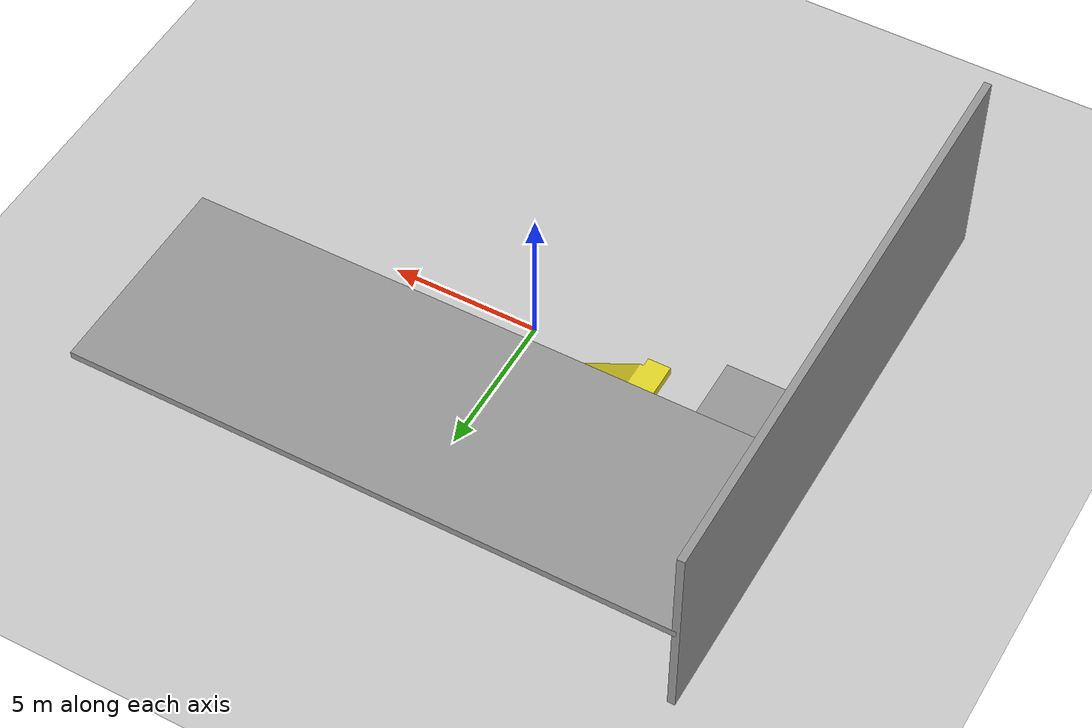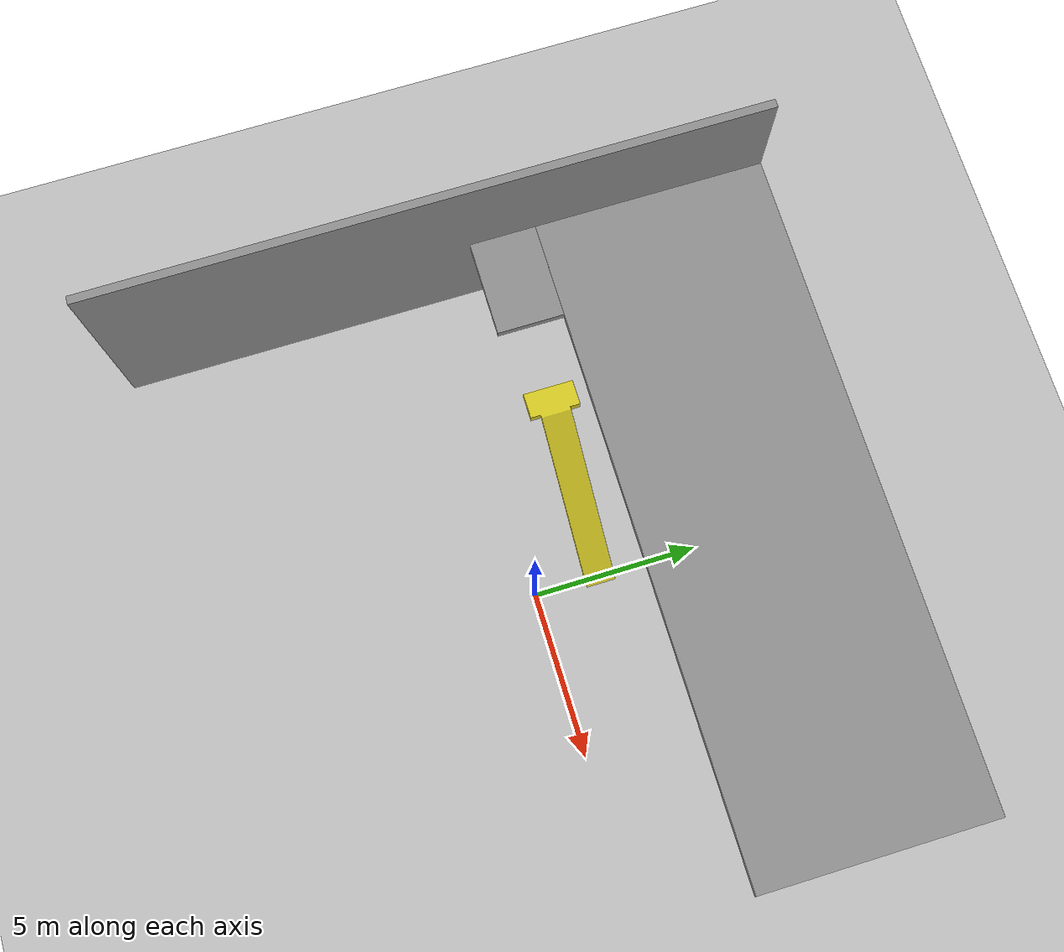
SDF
<sdf version="1.6">
 <world name="default">
  <include><uri>model://sun</uri></include>
  <include><uri>model://ground_plane</uri></include>
  <include><uri>model://stairs</uri><name>stairs</name><pose>0 2.0 0 0 0 -1.570796</pose></include>
  <model name="room">
   <static>true</static>
   <link name="front_wall">
    <collision name="front_wall_collision">
     <pose>-10 0 3.5 0 0 0</pose>
     <geometry><box><size>0.25 20 7</size></box></geometry>
    </collision>
    <visual name="front_wall_visual">
     <cast_shadows>false</cast_shadows>
     <pose>-10 0 3.5 0 0 0</pose>
     <geometry><box><size>0.25 20 7</size></box></geometry>
     <material>
      <script><name>Gazebo/Gray</name><uri>file://media/materials/scripts/gazebo.material</uri></script>
     </material>
    </visual>
   </link>
   <link name="top_floor">
    <collision name="top_floor_collision">
     <pose>0 6.5 3.5 0 -1.570796 1.570796</pose>
     <geometry><box><size>0.25 20 7</size></box></geometry>
    </collision>
    <visual name="top_floor_visual">
     <cast_shadows>false</cast_shadows>
     <pose>0 6.5 3.5 0 -1.570796 1.570796</pose>
     <geometry><box><size>0.25 20 7</size></box></geometry>
     <material>
      <script><name>Gazebo/Gray</name><uri>file://media/materials/scripts/gazebo.material</uri></script>
     </material>
    </visual>
    <collision name="top_floor_stairs_collision">
     <pose>-8.5 2 3.5 0 -1.570796 1.570796</pose>
     <geometry><box><size>0.25 3 2</size></box></geometry>
    </collision>
    <visual name="top_floor_stairs_visual">
     <cast_shadows>false</cast_shadows>
     <pose>-8.5 2 3.5 0 -1.570796 1.570796</pose>
     <geometry><box><size>0.25 3 2</size></box></geometry>
     <material>
      <script><name>Gazebo/Gray</name><uri>file://media/materials/scripts/gazebo.material</uri></script>
     </material>
    </visual>
   </link>
  </model>
 </world>
</sdf>

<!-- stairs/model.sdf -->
<sdf version='1.7'>
  <model name='stairs'>
    <static>true</static>
    <link name='base_link'>
      <inertial>
        <pose>-1.5939E-14 -3.0532 1.8301 0 0 0</pose>
        <mass>926.96</mass>
        <inertia>
          <ixx>5747.3</ixx>
          <ixy>-3.7391E-14</ixy>
          <ixz>-2.1153E-14</ixz>
          <iyy>611.9</iyy>
          <iyz>2485.9</iyz>
          <izz>4480.6</izz>
        </inertia>
      </inertial>
      <collision name='base_link_collision'>
        <pose>0 0 0 0 -0 0</pose>
        <geometry>
          <mesh>
            <scale>0.75 0.75 0.75</scale>
            <uri>model://stairs/meshes/collision_1.STL</uri>
          </mesh>
        </geometry>
      </collision>
      <visual name='base_link_visual'>
        <pose>0 0 0 0 -0 0</pose>
        <geometry>
          <mesh>
            <scale>0.75 0.75 0.75</scale>
            <uri>model://stairs/meshes/visual.STL</uri>
          </mesh>
        </geometry>
        <material>
          <script>
            <name>Gazebo/Yellow</name>
            <uri>file://media/materials/scripts/gazebo.material</uri>
          </script>
        </material>
      </visual>
    </link>
  </model>
</sdf>
